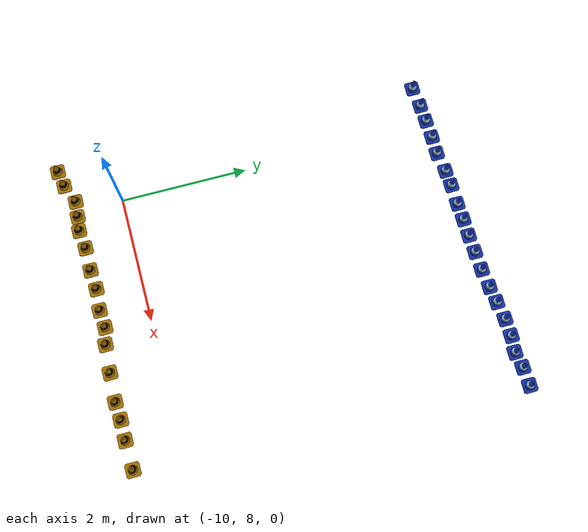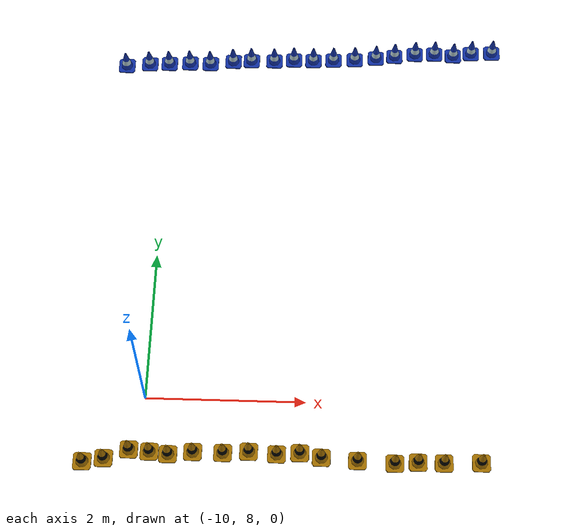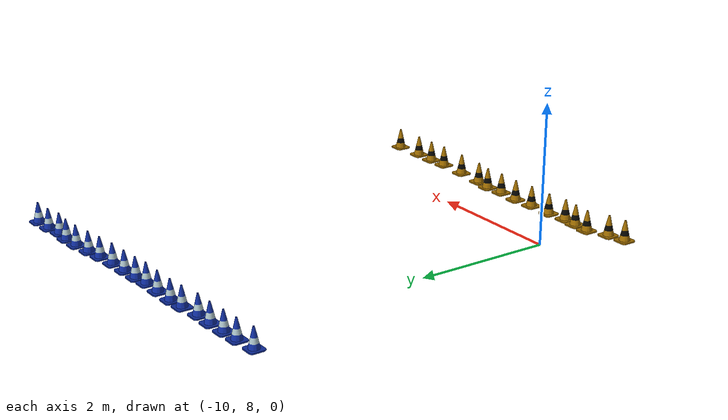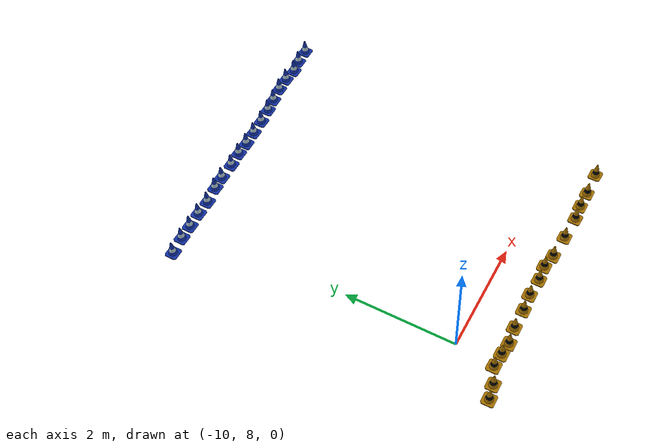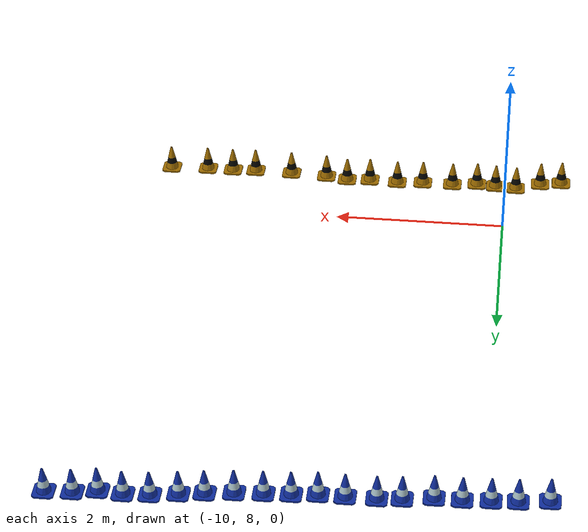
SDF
<sdf version="1.6">
 <model name="small_track">
  <link name="link_0_clone_0_clone_clone">
   <pose>-9.65737 7.2378 0.083534 0.001019 -0.000437 -0.000128</pose>
   <visual name="visual">
    <geometry><mesh><uri>model://eufs_description/meshes/cone_yellow.dae</uri></mesh></geometry>
    <material><shader type="pixel"/></material>
   </visual>
  </link>
  <link name="link_0_clone_0_clone_clone_clone">
   <pose>-8.9918 7.27282 0.083534 0.001019 -0.000437 -0.000128</pose>
   <visual name="visual">
    <geometry><mesh><uri>model://eufs_description/meshes/cone_yellow.dae</uri></mesh></geometry>
    <material><shader type="pixel"/></material>
   </visual>
  </link>
  <link name="link_0_clone_0_clone_clone_clone_0">
   <pose>-8.33728 7.27492 0.083534 0.001019 -0.000437 -0.000128</pose>
   <visual name="visual">
    <geometry><mesh><uri>model://eufs_description/meshes/cone_yellow.dae</uri></mesh></geometry>
    <material><shader type="pixel"/></material>
   </visual>
  </link>
  <link name="link_0_clone_0_clone_clone_clone_1">
   <pose>-7.7938 7.24817 0.083534 0.001019 -0.000437 -0.000128</pose>
   <visual name="visual">
    <geometry><mesh><uri>model://eufs_description/meshes/cone_yellow.dae</uri></mesh></geometry>
    <material><shader type="pixel"/></material>
   </visual>
  </link>
  <link name="link_0_clone_0_clone_clone_clone_2">
   <pose>-7.35413 7.22012 0.083534 0.001019 -0.000437 -0.000128</pose>
   <visual name="visual">
    <geometry><mesh><uri>model://eufs_description/meshes/cone_yellow.dae</uri></mesh></geometry>
    <material><shader type="pixel"/></material>
   </visual>
  </link>
  <link name="link_0_clone_0_clone_clone_clone_245">
   <pose>-10.6905 7.11539 0.083534 0.001019 -0.000437 -0.000128</pose>
   <visual name="visual">
    <geometry><mesh><uri>model://eufs_description/meshes/cone_yellow.dae</uri></mesh></geometry>
    <material><shader type="pixel"/></material>
   </visual>
  </link>
  <link name="link_0_clone_0_clone_clone_clone_246">
   <pose>-10.4345 7.16284 0.083534 0.001019 -0.000437 -0.000128</pose>
   <visual name="visual">
    <geometry><mesh><uri>model://eufs_description/meshes/cone_yellow.dae</uri></mesh></geometry>
    <material><shader type="pixel"/></material>
   </visual>
  </link>
  <link name="link_0_clone_0_clone_clone_clone_247">
   <pose>-10.1367 7.28336 0.083534 0.001019 -0.000437 -0.000128</pose>
   <visual name="visual">
    <geometry><mesh><uri>model://eufs_description/meshes/cone_yellow.dae</uri></mesh></geometry>
    <material><shader type="pixel"/></material>
   </visual>
  </link>
  <link name="link_0_clone_0_clone_clone_clone_248">
   <pose>-9.88642 7.26309 0.083534 0.001019 -0.000437 -0.000128</pose>
   <visual name="visual">
    <geometry><mesh><uri>model://eufs_description/meshes/cone_yellow.dae</uri></mesh></geometry>
    <material><shader type="pixel"/></material>
   </visual>
  </link>
  <link name="link_0_clone_0_clone_clone_clone_249">
   <pose>-9.35745 7.27427 0.083534 0.001019 -0.000437 -0.000128</pose>
   <visual name="visual">
    <geometry><mesh><uri>model://eufs_description/meshes/cone_yellow.dae</uri></mesh></geometry>
    <material><shader type="pixel"/></material>
   </visual>
  </link>
  <link name="link_0_clone_0_clone_clone_clone_250">
   <pose>-8.67753 7.29794 0.083534 0.001019 -0.000437 -0.000128</pose>
   <visual name="visual">
    <geometry><mesh><uri>model://eufs_description/meshes/cone_yellow.dae</uri></mesh></geometry>
    <material><shader type="pixel"/></material>
   </visual>
  </link>
  <link name="link_0_clone_0_clone_clone_clone_251">
   <pose>-8.05581 7.29877 0.083534 0.001019 -0.000437 -0.000128</pose>
   <visual name="visual">
    <geometry><mesh><uri>model://eufs_description/meshes/cone_yellow.dae</uri></mesh></geometry>
    <material><shader type="pixel"/></material>
   </visual>
  </link>
  <link name="link_0_clone_0_clone_clone_clone_252">
   <pose>-6.62033 7.22206 0.083534 0.001019 -0.000437 -0.000128</pose>
   <visual name="visual">
    <geometry><mesh><uri>model://eufs_description/meshes/cone_yellow.dae</uri></mesh></geometry>
    <material><shader type="pixel"/></material>
   </visual>
  </link>
  <link name="link_0_clone_0_clone_clone_clone_3">
   <pose>-6.30553 7.2206 0.083534 0.001019 -0.000437 -0.000128</pose>
   <visual name="visual">
    <geometry><mesh><uri>model://eufs_description/meshes/cone_yellow.dae</uri></mesh></geometry>
    <material><shader type="pixel"/></material>
   </visual>
  </link>
  <link name="link_0_clone_0_clone_clone_clone_4">
   <pose>-5.85342 7.23659 0.083534 0.001019 -0.000437 -0.000128</pose>
   <visual name="visual">
    <geometry><mesh><uri>model://eufs_description/meshes/cone_yellow.dae</uri></mesh></geometry>
    <material><shader type="pixel"/></material>
   </visual>
  </link>
  <link name="link_0_clone_1">
   <pose>-8.31569 13.0924 0.079001 0 -0 0</pose>
   <visual name="visual">
    <geometry><mesh><uri>model://eufs_description/meshes/cone_blue.dae</uri></mesh></geometry>
    <material><shader type="pixel"/></material>
   </visual>
  </link>
  <link name="link_0_clone_2">
   <pose>-6.90273 7.20128 0.080073 0 -0 0</pose>
   <visual name="visual">
    <geometry><mesh><uri>model://eufs_description/meshes/cone_yellow.dae</uri></mesh></geometry>
    <material><shader type="pixel"/></material>
   </visual>
  </link>
  <link name="link_0_clone_62_clone_14">
   <pose>-10.6349 12.9407 0.063291 -0.001555 0.00019 -5.2e-05</pose>
   <visual name="visual">
    <geometry><mesh><uri>model://eufs_description/meshes/cone_blue.dae</uri></mesh></geometry>
    <material><shader type="pixel"/></material>
   </visual>
  </link>
  <link name="link_0_clone_62_clone_15">
   <pose>-10.3171 12.979 0.063291 -0.001555 0.00019 -5.2e-05</pose>
   <visual name="visual">
    <geometry><mesh><uri>model://eufs_description/meshes/cone_blue.dae</uri></mesh></geometry>
    <material><shader type="pixel"/></material>
   </visual>
  </link>
  <link name="link_0_clone_62_clone_16">
   <pose>-10.0464 12.9931 0.063291 -0.001555 0.00019 -5.2e-05</pose>
   <visual name="visual">
    <geometry><mesh><uri>model://eufs_description/meshes/cone_blue.dae</uri></mesh></geometry>
    <material><shader type="pixel"/></material>
   </visual>
  </link>
  <link name="link_0_clone_62_clone_17">
   <pose>-9.75871 13.0099 0.063291 -0.001555 0.00019 -5.2e-05</pose>
   <visual name="visual">
    <geometry><mesh><uri>model://eufs_description/meshes/cone_blue.dae</uri></mesh></geometry>
    <material><shader type="pixel"/></material>
   </visual>
  </link>
  <link name="link_0_clone_62_clone_18">
   <pose>-9.47597 13.0084 0.063291 -0.001555 0.00019 -5.2e-05</pose>
   <visual name="visual">
    <geometry><mesh><uri>model://eufs_description/meshes/cone_blue.dae</uri></mesh></geometry>
    <material><shader type="pixel"/></material>
   </visual>
  </link>
  <link name="link_0_clone_62_clone_19">
   <pose>-9.1591 13.0553 0.063291 -0.001555 0.00019 -5.2e-05</pose>
   <visual name="visual">
    <geometry><mesh><uri>model://eufs_description/meshes/cone_blue.dae</uri></mesh></geometry>
    <material><shader type="pixel"/></material>
   </visual>
  </link>
  <link name="link_0_clone_62_clone_20">
   <pose>-8.90554 13.0756 0.063291 -0.001555 0.00019 -5.2e-05</pose>
   <visual name="visual">
    <geometry><mesh><uri>model://eufs_description/meshes/cone_blue.dae</uri></mesh></geometry>
    <material><shader type="pixel"/></material>
   </visual>
  </link>
  <link name="link_0_clone_62_clone_21">
   <pose>-8.5883 13.0793 0.063291 -0.001555 0.00019 -5.2e-05</pose>
   <visual name="visual">
    <geometry><mesh><uri>model://eufs_description/meshes/cone_blue.dae</uri></mesh></geometry>
    <material><shader type="pixel"/></material>
   </visual>
  </link>
  <link name="link_0_clone_62_clone_22">
   <pose>-8.04608 13.102 0.063291 -0.001555 0.00019 -5.2e-05</pose>
   <visual name="visual">
    <geometry><mesh><uri>model://eufs_description/meshes/cone_blue.dae</uri></mesh></geometry>
    <material><shader type="pixel"/></material>
   </visual>
  </link>
  <link name="link_0_clone_62_clone_23">
   <pose>-7.76732 13.1174 0.063291 -0.001555 0.00019 -5.2e-05</pose>
   <visual name="visual">
    <geometry><mesh><uri>model://eufs_description/meshes/cone_blue.dae</uri></mesh></geometry>
    <material><shader type="pixel"/></material>
   </visual>
  </link>
  <link name="link_0_clone_62_clone_24">
   <pose>-7.47138 13.1351 0.063291 -0.001555 0.00019 -5.2e-05</pose>
   <visual name="visual">
    <geometry><mesh><uri>model://eufs_description/meshes/cone_blue.dae</uri></mesh></geometry>
    <material><shader type="pixel"/></material>
   </visual>
  </link>
  <link name="link_0_clone_62_clone_25">
   <pose>-7.17736 13.1699 0.063291 -0.001555 0.00019 -5.2e-05</pose>
   <visual name="visual">
    <geometry><mesh><uri>model://eufs_description/meshes/cone_blue.dae</uri></mesh></geometry>
    <material><shader type="pixel"/></material>
   </visual>
  </link>
  <link name="link_0_clone_62_clone_26">
   <pose>-6.91786 13.2082 0.063291 -0.001555 0.00019 -5.2e-05</pose>
   <visual name="visual">
    <geometry><mesh><uri>model://eufs_description/meshes/cone_blue.dae</uri></mesh></geometry>
    <material><shader type="pixel"/></material>
   </visual>
  </link>
  <link name="link_0_clone_62_clone_27">
   <pose>-6.63312 13.2504 0.063291 -0.001555 0.00019 -5.2e-05</pose>
   <visual name="visual">
    <geometry><mesh><uri>model://eufs_description/meshes/cone_blue.dae</uri></mesh></geometry>
    <material><shader type="pixel"/></material>
   </visual>
  </link>
  <link name="link_0_clone_62_clone_28">
   <pose>-6.36163 13.2644 0.063291 -0.001555 0.00019 -5.2e-05</pose>
   <visual name="visual">
    <geometry><mesh><uri>model://eufs_description/meshes/cone_blue.dae</uri></mesh></geometry>
    <material><shader type="pixel"/></material>
   </visual>
  </link>
  <link name="link_0_clone_62_clone_29">
   <pose>-6.10149 13.2418 0.063291 -0.001555 0.00019 -5.2e-05</pose>
   <visual name="visual">
    <geometry><mesh><uri>model://eufs_description/meshes/cone_blue.dae</uri></mesh></geometry>
    <material><shader type="pixel"/></material>
   </visual>
  </link>
  <link name="link_0_clone_62_clone_30">
   <pose>-5.85124 13.2877 0.063291 -0.001555 0.00019 -5.2e-05</pose>
   <visual name="visual">
    <geometry><mesh><uri>model://eufs_description/meshes/cone_blue.dae</uri></mesh></geometry>
    <material><shader type="pixel"/></material>
   </visual>
  </link>
  <link name="link_0_clone_62_clone_31">
   <pose>-5.56206 13.3043 0.063291 -0.001555 0.00019 -5.2e-05</pose>
   <visual name="visual">
    <geometry><mesh><uri>model://eufs_description/meshes/cone_blue.dae</uri></mesh></geometry>
    <material><shader type="pixel"/></material>
   </visual>
  </link>
  <static>1</static>
 </model>
</sdf>
